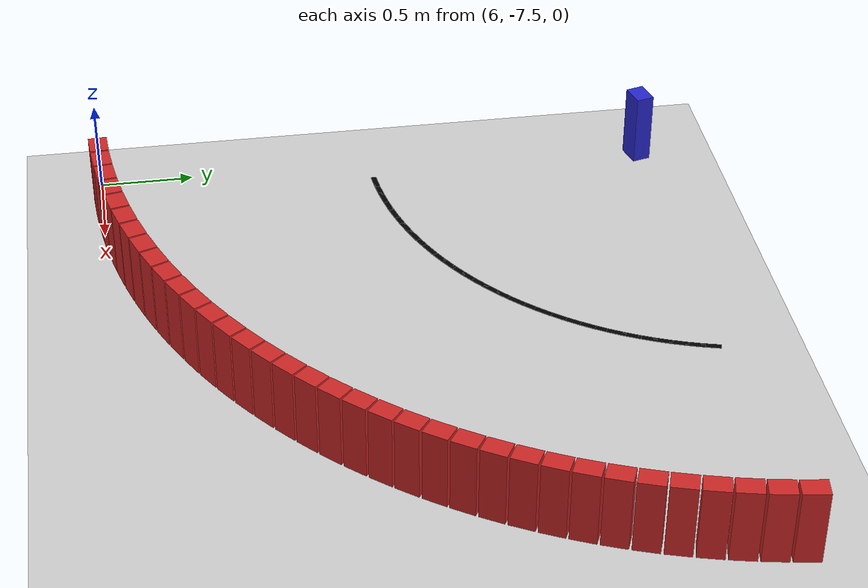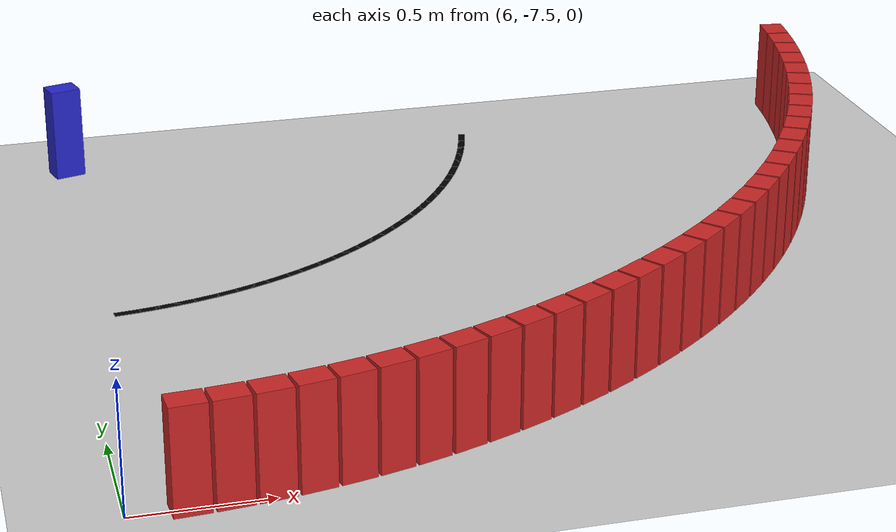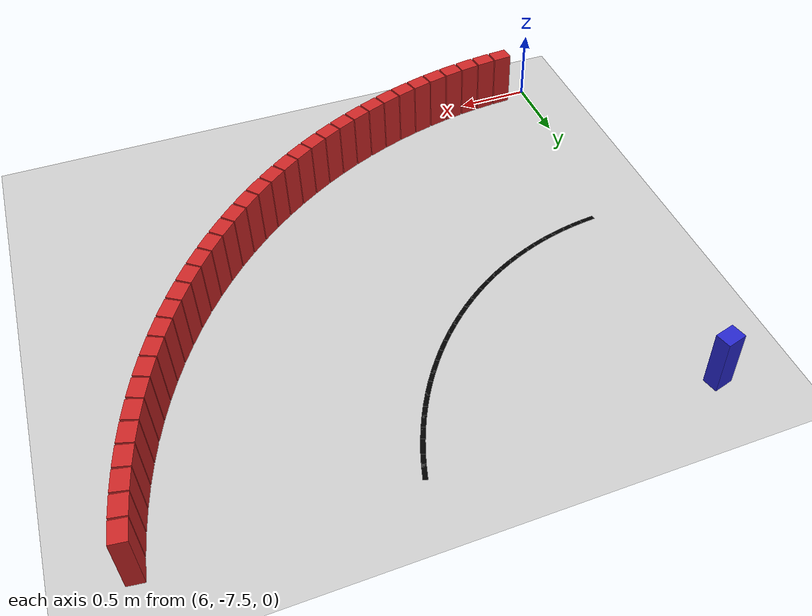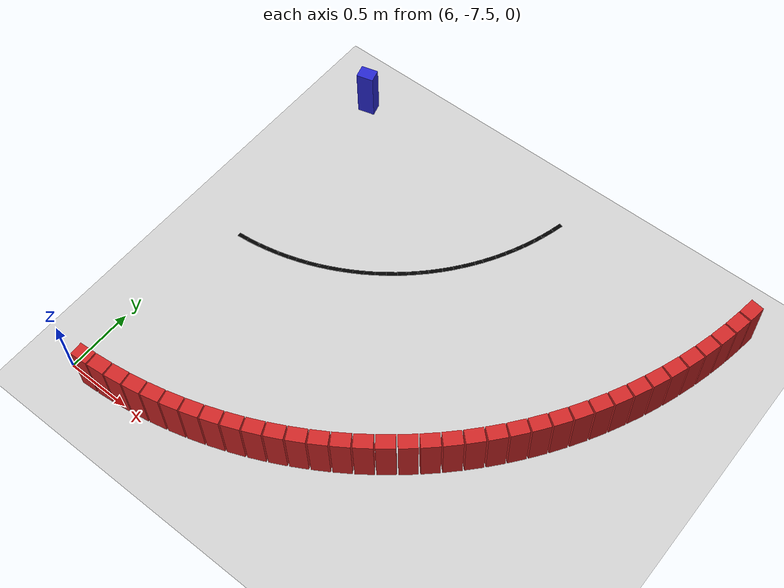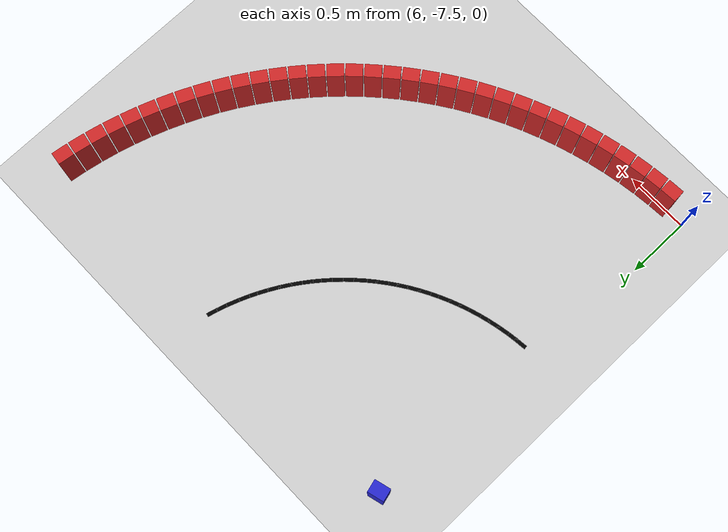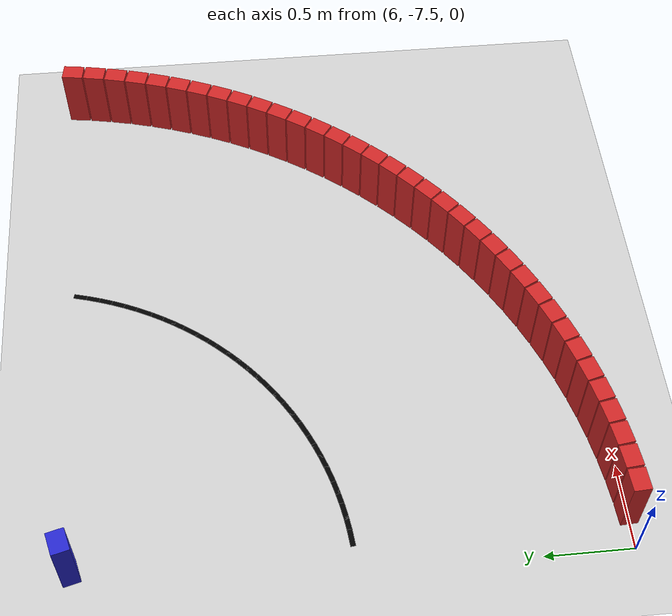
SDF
<sdf version="1.6">
 <world name="new_race_track">
  <include><uri>model://ground_plane</uri></include>
  <include><uri>model://sun</uri></include>
  <model name="race_track">
   <static>true</static>
   <link name="wall_link_206">
    <collision name="c"><geometry><box><size>0.1305 0.1 0.4</size></box></geometry></collision>
    <visual name="v">
     <geometry><box><size>0.1305 0.1 0.4</size></box></geometry>
     <material><ambient>0.15 0.15 0.8 1</ambient><diffuse>0.15 0.15 0.8 1</diffuse></material>
    </visual>
    <pose>6.1293 -4.4826 0.200 0 0 0.2618</pose>
   </link>
   <link name="wall_link_613">
    <collision name="c"><geometry><box><size>0.1305 0.1 0.4</size></box></geometry></collision>
    <visual name="v">
     <geometry><box><size>0.1305 0.1 0.4</size></box></geometry>
     <material><ambient>0.8 0.15 0.15 1</ambient><diffuse>0.8 0.15 0.15 1</diffuse></material>
    </visual>
    <pose>6.2113 -7.4932 0.200 0 0 0.0604</pose>
   </link>
   <link name="wall_link_614">
    <collision name="c"><geometry><box><size>0.1305 0.1 0.4</size></box></geometry></collision>
    <visual name="v">
     <geometry><box><size>0.1305 0.1 0.4</size></box></geometry>
     <material><ambient>0.8 0.15 0.15 1</ambient><diffuse>0.8 0.15 0.15 1</diffuse></material>
    </visual>
    <pose>6.3518 -7.4819 0.200 0 0 0.1007</pose>
   </link>
   <link name="wall_link_615">
    <collision name="c"><geometry><box><size>0.1305 0.1 0.4</size></box></geometry></collision>
    <visual name="v">
     <geometry><box><size>0.1305 0.1 0.4</size></box></geometry>
     <material><ambient>0.8 0.15 0.15 1</ambient><diffuse>0.8 0.15 0.15 1</diffuse></material>
    </visual>
    <pose>6.4917 -7.4649 0.200 0 0 0.1410</pose>
   </link>
   <link name="wall_link_616">
    <collision name="c"><geometry><box><size>0.1305 0.1 0.4</size></box></geometry></collision>
    <visual name="v">
     <geometry><box><size>0.1305 0.1 0.4</size></box></geometry>
     <material><ambient>0.8 0.15 0.15 1</ambient><diffuse>0.8 0.15 0.15 1</diffuse></material>
    </visual>
    <pose>6.6308 -7.4423 0.200 0 0 0.1812</pose>
   </link>
   <link name="wall_link_617">
    <collision name="c"><geometry><box><size>0.1305 0.1 0.4</size></box></geometry></collision>
    <visual name="v">
     <geometry><box><size>0.1305 0.1 0.4</size></box></geometry>
     <material><ambient>0.8 0.15 0.15 1</ambient><diffuse>0.8 0.15 0.15 1</diffuse></material>
    </visual>
    <pose>6.7689 -7.4141 0.200 0 0 0.2215</pose>
   </link>
   <link name="wall_link_618">
    <collision name="c"><geometry><box><size>0.1305 0.1 0.4</size></box></geometry></collision>
    <visual name="v">
     <geometry><box><size>0.1305 0.1 0.4</size></box></geometry>
     <material><ambient>0.8 0.15 0.15 1</ambient><diffuse>0.8 0.15 0.15 1</diffuse></material>
    </visual>
    <pose>6.9058 -7.3803 0.200 0 0 0.2618</pose>
   </link>
   <link name="wall_link_619">
    <collision name="c"><geometry><box><size>0.1305 0.1 0.4</size></box></geometry></collision>
    <visual name="v">
     <geometry><box><size>0.1305 0.1 0.4</size></box></geometry>
     <material><ambient>0.8 0.15 0.15 1</ambient><diffuse>0.8 0.15 0.15 1</diffuse></material>
    </visual>
    <pose>7.0411 -7.3411 0.200 0 0 0.3021</pose>
   </link>
   <link name="wall_link_620">
    <collision name="c"><geometry><box><size>0.1305 0.1 0.4</size></box></geometry></collision>
    <visual name="v">
     <geometry><box><size>0.1305 0.1 0.4</size></box></geometry>
     <material><ambient>0.8 0.15 0.15 1</ambient><diffuse>0.8 0.15 0.15 1</diffuse></material>
    </visual>
    <pose>7.1748 -7.2965 0.200 0 0 0.3424</pose>
   </link>
   <link name="wall_link_621">
    <collision name="c"><geometry><box><size>0.1305 0.1 0.4</size></box></geometry></collision>
    <visual name="v">
     <geometry><box><size>0.1305 0.1 0.4</size></box></geometry>
     <material><ambient>0.8 0.15 0.15 1</ambient><diffuse>0.8 0.15 0.15 1</diffuse></material>
    </visual>
    <pose>7.3066 -7.2465 0.200 0 0 0.3826</pose>
   </link>
   <link name="wall_link_622">
    <collision name="c"><geometry><box><size>0.1305 0.1 0.4</size></box></geometry></collision>
    <visual name="v">
     <geometry><box><size>0.1305 0.1 0.4</size></box></geometry>
     <material><ambient>0.8 0.15 0.15 1</ambient><diffuse>0.8 0.15 0.15 1</diffuse></material>
    </visual>
    <pose>7.4363 -7.1913 0.200 0 0 0.4229</pose>
   </link>
   <link name="wall_link_623">
    <collision name="c"><geometry><box><size>0.1305 0.1 0.4</size></box></geometry></collision>
    <visual name="v">
     <geometry><box><size>0.1305 0.1 0.4</size></box></geometry>
     <material><ambient>0.8 0.15 0.15 1</ambient><diffuse>0.8 0.15 0.15 1</diffuse></material>
    </visual>
    <pose>7.5636 -7.1309 0.200 0 0 0.4632</pose>
   </link>
   <link name="wall_link_624">
    <collision name="c"><geometry><box><size>0.1305 0.1 0.4</size></box></geometry></collision>
    <visual name="v">
     <geometry><box><size>0.1305 0.1 0.4</size></box></geometry>
     <material><ambient>0.8 0.15 0.15 1</ambient><diffuse>0.8 0.15 0.15 1</diffuse></material>
    </visual>
    <pose>7.6884 -7.0654 0.200 0 0 0.5035</pose>
   </link>
   <link name="wall_link_625">
    <collision name="c"><geometry><box><size>0.1305 0.1 0.4</size></box></geometry></collision>
    <visual name="v">
     <geometry><box><size>0.1305 0.1 0.4</size></box></geometry>
     <material><ambient>0.8 0.15 0.15 1</ambient><diffuse>0.8 0.15 0.15 1</diffuse></material>
    </visual>
    <pose>7.8105 -6.9949 0.200 0 0 0.5437</pose>
   </link>
   <link name="wall_link_626">
    <collision name="c"><geometry><box><size>0.1305 0.1 0.4</size></box></geometry></collision>
    <visual name="v">
     <geometry><box><size>0.1305 0.1 0.4</size></box></geometry>
     <material><ambient>0.8 0.15 0.15 1</ambient><diffuse>0.8 0.15 0.15 1</diffuse></material>
    </visual>
    <pose>7.9296 -6.9196 0.200 0 0 0.5840</pose>
   </link>
   <link name="wall_link_627">
    <collision name="c"><geometry><box><size>0.1305 0.1 0.4</size></box></geometry></collision>
    <visual name="v">
     <geometry><box><size>0.1305 0.1 0.4</size></box></geometry>
     <material><ambient>0.8 0.15 0.15 1</ambient><diffuse>0.8 0.15 0.15 1</diffuse></material>
    </visual>
    <pose>8.0456 -6.8395 0.200 0 0 0.6243</pose>
   </link>
   <link name="wall_link_628">
    <collision name="c"><geometry><box><size>0.1305 0.1 0.4</size></box></geometry></collision>
    <visual name="v">
     <geometry><box><size>0.1305 0.1 0.4</size></box></geometry>
     <material><ambient>0.8 0.15 0.15 1</ambient><diffuse>0.8 0.15 0.15 1</diffuse></material>
    </visual>
    <pose>8.1583 -6.7548 0.200 0 0 0.6646</pose>
   </link>
   <link name="wall_link_629">
    <collision name="c"><geometry><box><size>0.1305 0.1 0.4</size></box></geometry></collision>
    <visual name="v">
     <geometry><box><size>0.1305 0.1 0.4</size></box></geometry>
     <material><ambient>0.8 0.15 0.15 1</ambient><diffuse>0.8 0.15 0.15 1</diffuse></material>
    </visual>
    <pose>8.2674 -6.6657 0.200 0 0 0.7048</pose>
   </link>
   <link name="wall_link_630">
    <collision name="c"><geometry><box><size>0.1305 0.1 0.4</size></box></geometry></collision>
    <visual name="v">
     <geometry><box><size>0.1305 0.1 0.4</size></box></geometry>
     <material><ambient>0.8 0.15 0.15 1</ambient><diffuse>0.8 0.15 0.15 1</diffuse></material>
    </visual>
    <pose>8.3729 -6.5722 0.200 0 0 0.7451</pose>
   </link>
   <link name="wall_link_631">
    <collision name="c"><geometry><box><size>0.1305 0.1 0.4</size></box></geometry></collision>
    <visual name="v">
     <geometry><box><size>0.1305 0.1 0.4</size></box></geometry>
     <material><ambient>0.8 0.15 0.15 1</ambient><diffuse>0.8 0.15 0.15 1</diffuse></material>
    </visual>
    <pose>8.4746 -6.4746 0.200 0 0 0.7854</pose>
   </link>
   <link name="wall_link_632">
    <collision name="c"><geometry><box><size>0.1305 0.1 0.4</size></box></geometry></collision>
    <visual name="v">
     <geometry><box><size>0.1305 0.1 0.4</size></box></geometry>
     <material><ambient>0.8 0.15 0.15 1</ambient><diffuse>0.8 0.15 0.15 1</diffuse></material>
    </visual>
    <pose>8.5722 -6.3729 0.200 0 0 0.8257</pose>
   </link>
   <link name="wall_link_633">
    <collision name="c"><geometry><box><size>0.1305 0.1 0.4</size></box></geometry></collision>
    <visual name="v">
     <geometry><box><size>0.1305 0.1 0.4</size></box></geometry>
     <material><ambient>0.8 0.15 0.15 1</ambient><diffuse>0.8 0.15 0.15 1</diffuse></material>
    </visual>
    <pose>8.6657 -6.2674 0.200 0 0 0.8660</pose>
   </link>
   <link name="wall_link_634">
    <collision name="c"><geometry><box><size>0.1305 0.1 0.4</size></box></geometry></collision>
    <visual name="v">
     <geometry><box><size>0.1305 0.1 0.4</size></box></geometry>
     <material><ambient>0.8 0.15 0.15 1</ambient><diffuse>0.8 0.15 0.15 1</diffuse></material>
    </visual>
    <pose>8.7548 -6.1583 0.200 0 0 0.9062</pose>
   </link>
   <link name="wall_link_635">
    <collision name="c"><geometry><box><size>0.1305 0.1 0.4</size></box></geometry></collision>
    <visual name="v">
     <geometry><box><size>0.1305 0.1 0.4</size></box></geometry>
     <material><ambient>0.8 0.15 0.15 1</ambient><diffuse>0.8 0.15 0.15 1</diffuse></material>
    </visual>
    <pose>8.8395 -6.0456 0.200 0 0 0.9465</pose>
   </link>
   <link name="wall_link_636">
    <collision name="c"><geometry><box><size>0.1305 0.1 0.4</size></box></geometry></collision>
    <visual name="v">
     <geometry><box><size>0.1305 0.1 0.4</size></box></geometry>
     <material><ambient>0.8 0.15 0.15 1</ambient><diffuse>0.8 0.15 0.15 1</diffuse></material>
    </visual>
    <pose>8.9196 -5.9296 0.200 0 0 0.9868</pose>
   </link>
   <link name="wall_link_637">
    <collision name="c"><geometry><box><size>0.1305 0.1 0.4</size></box></geometry></collision>
    <visual name="v">
     <geometry><box><size>0.1305 0.1 0.4</size></box></geometry>
     <material><ambient>0.8 0.15 0.15 1</ambient><diffuse>0.8 0.15 0.15 1</diffuse></material>
    </visual>
    <pose>8.9949 -5.8105 0.200 0 0 1.0271</pose>
   </link>
   <link name="wall_link_638">
    <collision name="c"><geometry><box><size>0.1305 0.1 0.4</size></box></geometry></collision>
    <visual name="v">
     <geometry><box><size>0.1305 0.1 0.4</size></box></geometry>
     <material><ambient>0.8 0.15 0.15 1</ambient><diffuse>0.8 0.15 0.15 1</diffuse></material>
    </visual>
    <pose>9.0654 -5.6884 0.200 0 0 1.0673</pose>
   </link>
   <link name="wall_link_639">
    <collision name="c"><geometry><box><size>0.1305 0.1 0.4</size></box></geometry></collision>
    <visual name="v">
     <geometry><box><size>0.1305 0.1 0.4</size></box></geometry>
     <material><ambient>0.8 0.15 0.15 1</ambient><diffuse>0.8 0.15 0.15 1</diffuse></material>
    </visual>
    <pose>9.1309 -5.5636 0.200 0 0 1.1076</pose>
   </link>
   <link name="wall_link_640">
    <collision name="c"><geometry><box><size>0.1305 0.1 0.4</size></box></geometry></collision>
    <visual name="v">
     <geometry><box><size>0.1305 0.1 0.4</size></box></geometry>
     <material><ambient>0.8 0.15 0.15 1</ambient><diffuse>0.8 0.15 0.15 1</diffuse></material>
    </visual>
    <pose>9.1913 -5.4363 0.200 0 0 1.1479</pose>
   </link>
   <link name="wall_link_641">
    <collision name="c"><geometry><box><size>0.1305 0.1 0.4</size></box></geometry></collision>
    <visual name="v">
     <geometry><box><size>0.1305 0.1 0.4</size></box></geometry>
     <material><ambient>0.8 0.15 0.15 1</ambient><diffuse>0.8 0.15 0.15 1</diffuse></material>
    </visual>
    <pose>9.2465 -5.3066 0.200 0 0 1.1882</pose>
   </link>
   <link name="wall_link_642">
    <collision name="c"><geometry><box><size>0.1305 0.1 0.4</size></box></geometry></collision>
    <visual name="v">
     <geometry><box><size>0.1305 0.1 0.4</size></box></geometry>
     <material><ambient>0.8 0.15 0.15 1</ambient><diffuse>0.8 0.15 0.15 1</diffuse></material>
    </visual>
    <pose>9.2965 -5.1748 0.200 0 0 1.2284</pose>
   </link>
   <link name="wall_link_643">
    <collision name="c"><geometry><box><size>0.1305 0.1 0.4</size></box></geometry></collision>
    <visual name="v">
     <geometry><box><size>0.1305 0.1 0.4</size></box></geometry>
     <material><ambient>0.8 0.15 0.15 1</ambient><diffuse>0.8 0.15 0.15 1</diffuse></material>
    </visual>
    <pose>9.3411 -5.0411 0.200 0 0 1.2687</pose>
   </link>
   <link name="wall_link_644">
    <collision name="c"><geometry><box><size>0.1305 0.1 0.4</size></box></geometry></collision>
    <visual name="v">
     <geometry><box><size>0.1305 0.1 0.4</size></box></geometry>
     <material><ambient>0.8 0.15 0.15 1</ambient><diffuse>0.8 0.15 0.15 1</diffuse></material>
    </visual>
    <pose>9.3803 -4.9058 0.200 0 0 1.3090</pose>
   </link>
   <link name="wall_link_645">
    <collision name="c"><geometry><box><size>0.1305 0.1 0.4</size></box></geometry></collision>
    <visual name="v">
     <geometry><box><size>0.1305 0.1 0.4</size></box></geometry>
     <material><ambient>0.8 0.15 0.15 1</ambient><diffuse>0.8 0.15 0.15 1</diffuse></material>
    </visual>
    <pose>9.4141 -4.7689 0.200 0 0 1.3493</pose>
   </link>
   <link name="wall_link_646">
    <collision name="c"><geometry><box><size>0.1305 0.1 0.4</size></box></geometry></collision>
    <visual name="v">
     <geometry><box><size>0.1305 0.1 0.4</size></box></geometry>
     <material><ambient>0.8 0.15 0.15 1</ambient><diffuse>0.8 0.15 0.15 1</diffuse></material>
    </visual>
    <pose>9.4423 -4.6308 0.200 0 0 1.3896</pose>
   </link>
   <link name="wall_link_647">
    <collision name="c"><geometry><box><size>0.1305 0.1 0.4</size></box></geometry></collision>
    <visual name="v">
     <geometry><box><size>0.1305 0.1 0.4</size></box></geometry>
     <material><ambient>0.8 0.15 0.15 1</ambient><diffuse>0.8 0.15 0.15 1</diffuse></material>
    </visual>
    <pose>9.4649 -4.4917 0.200 0 0 1.4298</pose>
   </link>
   <link name="line_link_1183">
    <visual name="v">
     <geometry><box><size>0.1005 0.03 0.002</size></box></geometry>
     <material><ambient>0 0 0 1</ambient><diffuse>0 0 0 1</diffuse></material>
    </visual>
    <pose>6.2010 -5.9895 0.002 0 0 0.1007</pose>
   </link>
   <link name="line_link_1184">
    <visual name="v">
     <geometry><box><size>0.1005 0.03 0.002</size></box></geometry>
     <material><ambient>0 0 0 1</ambient><diffuse>0 0 0 1</diffuse></material>
    </visual>
    <pose>6.2809 -5.9798 0.002 0 0 0.1410</pose>
   </link>
   <link name="line_link_1185">
    <visual name="v">
     <geometry><box><size>0.1005 0.03 0.002</size></box></geometry>
     <material><ambient>0 0 0 1</ambient><diffuse>0 0 0 1</diffuse></material>
    </visual>
    <pose>6.3604 -5.9668 0.002 0 0 0.1812</pose>
   </link>
   <link name="line_link_1186">
    <visual name="v">
     <geometry><box><size>0.1005 0.03 0.002</size></box></geometry>
     <material><ambient>0 0 0 1</ambient><diffuse>0 0 0 1</diffuse></material>
    </visual>
    <pose>6.4393 -5.9507 0.002 0 0 0.2215</pose>
   </link>
   <link name="line_link_1187">
    <visual name="v">
     <geometry><box><size>0.1005 0.03 0.002</size></box></geometry>
     <material><ambient>0 0 0 1</ambient><diffuse>0 0 0 1</diffuse></material>
    </visual>
    <pose>6.5175 -5.9315 0.002 0 0 0.2618</pose>
   </link>
   <link name="line_link_1188">
    <visual name="v">
     <geometry><box><size>0.1005 0.03 0.002</size></box></geometry>
     <material><ambient>0 0 0 1</ambient><diffuse>0 0 0 1</diffuse></material>
    </visual>
    <pose>6.5949 -5.9091 0.002 0 0 0.3021</pose>
   </link>
   <link name="line_link_1189">
    <visual name="v">
     <geometry><box><size>0.1005 0.03 0.002</size></box></geometry>
     <material><ambient>0 0 0 1</ambient><diffuse>0 0 0 1</diffuse></material>
    </visual>
    <pose>6.6713 -5.8836 0.002 0 0 0.3424</pose>
   </link>
   <link name="line_link_1190">
    <visual name="v">
     <geometry><box><size>0.1005 0.03 0.002</size></box></geometry>
     <material><ambient>0 0 0 1</ambient><diffuse>0 0 0 1</diffuse></material>
    </visual>
    <pose>6.7466 -5.8550 0.002 0 0 0.3826</pose>
   </link>
   <link name="line_link_1191">
    <visual name="v">
     <geometry><box><size>0.1005 0.03 0.002</size></box></geometry>
     <material><ambient>0 0 0 1</ambient><diffuse>0 0 0 1</diffuse></material>
    </visual>
    <pose>6.8207 -5.8234 0.002 0 0 0.4229</pose>
   </link>
   <link name="line_link_1192">
    <visual name="v">
     <geometry><box><size>0.1005 0.03 0.002</size></box></geometry>
     <material><ambient>0 0 0 1</ambient><diffuse>0 0 0 1</diffuse></material>
    </visual>
    <pose>6.8934 -5.7889 0.002 0 0 0.4632</pose>
   </link>
   <link name="line_link_1193">
    <visual name="v">
     <geometry><box><size>0.1005 0.03 0.002</size></box></geometry>
     <material><ambient>0 0 0 1</ambient><diffuse>0 0 0 1</diffuse></material>
    </visual>
    <pose>6.9647 -5.7515 0.002 0 0 0.5035</pose>
   </link>
   <link name="line_link_1194">
    <visual name="v">
     <geometry><box><size>0.1005 0.03 0.002</size></box></geometry>
     <material><ambient>0 0 0 1</ambient><diffuse>0 0 0 1</diffuse></material>
    </visual>
    <pose>7.0345 -5.7112 0.002 0 0 0.5437</pose>
   </link>
   <link name="line_link_1195">
    <visual name="v">
     <geometry><box><size>0.1005 0.03 0.002</size></box></geometry>
     <material><ambient>0 0 0 1</ambient><diffuse>0 0 0 1</diffuse></material>
    </visual>
    <pose>7.1025 -5.6682 0.002 0 0 0.5840</pose>
   </link>
   <link name="line_link_1196">
    <visual name="v">
     <geometry><box><size>0.1005 0.03 0.002</size></box></geometry>
     <material><ambient>0 0 0 1</ambient><diffuse>0 0 0 1</diffuse></material>
    </visual>
    <pose>7.1688 -5.6224 0.002 0 0 0.6243</pose>
   </link>
   <link name="line_link_1197">
    <visual name="v">
     <geometry><box><size>0.1005 0.03 0.002</size></box></geometry>
     <material><ambient>0 0 0 1</ambient><diffuse>0 0 0 1</diffuse></material>
    </visual>
    <pose>7.2332 -5.5740 0.002 0 0 0.6646</pose>
   </link>
   <link name="line_link_1198">
    <visual name="v">
     <geometry><box><size>0.1005 0.03 0.002</size></box></geometry>
     <material><ambient>0 0 0 1</ambient><diffuse>0 0 0 1</diffuse></material>
    </visual>
    <pose>7.2956 -5.5231 0.002 0 0 0.7048</pose>
   </link>
   <link name="line_link_1199">
    <visual name="v">
     <geometry><box><size>0.1005 0.03 0.002</size></box></geometry>
     <material><ambient>0 0 0 1</ambient><diffuse>0 0 0 1</diffuse></material>
    </visual>
    <pose>7.3558 -5.4697 0.002 0 0 0.7451</pose>
   </link>
   <link name="line_link_1200">
    <visual name="v">
     <geometry><box><size>0.1005 0.03 0.002</size></box></geometry>
     <material><ambient>0 0 0 1</ambient><diffuse>0 0 0 1</diffuse></material>
    </visual>
    <pose>7.4139 -5.4139 0.002 0 0 0.7854</pose>
   </link>
   <link name="line_link_1201">
    <visual name="v">
     <geometry><box><size>0.1005 0.03 0.002</size></box></geometry>
     <material><ambient>0 0 0 1</ambient><diffuse>0 0 0 1</diffuse></material>
    </visual>
    <pose>7.4697 -5.3558 0.002 0 0 0.8257</pose>
   </link>
   <link name="line_link_1202">
    <visual name="v">
     <geometry><box><size>0.1005 0.03 0.002</size></box></geometry>
     <material><ambient>0 0 0 1</ambient><diffuse>0 0 0 1</diffuse></material>
    </visual>
    <pose>7.5231 -5.2956 0.002 0 0 0.8660</pose>
   </link>
   <link name="line_link_1203">
    <visual name="v">
     <geometry><box><size>0.1005 0.03 0.002</size></box></geometry>
     <material><ambient>0 0 0 1</ambient><diffuse>0 0 0 1</diffuse></material>
    </visual>
    <pose>7.5740 -5.2332 0.002 0 0 0.9062</pose>
   </link>
   <link name="line_link_1204">
    <visual name="v">
     <geometry><box><size>0.1005 0.03 0.002</size></box></geometry>
     <material><ambient>0 0 0 1</ambient><diffuse>0 0 0 1</diffuse></material>
    </visual>
    <pose>7.6224 -5.1688 0.002 0 0 0.9465</pose>
   </link>
   <link name="line_link_1205">
    <visual name="v">
     <geometry><box><size>0.1005 0.03 0.002</size></box></geometry>
     <material><ambient>0 0 0 1</ambient><diffuse>0 0 0 1</diffuse></material>
    </visual>
    <pose>7.6682 -5.1025 0.002 0 0 0.9868</pose>
   </link>
   <link name="line_link_1206">
    <visual name="v">
     <geometry><box><size>0.1005 0.03 0.002</size></box></geometry>
     <material><ambient>0 0 0 1</ambient><diffuse>0 0 0 1</diffuse></material>
    </visual>
    <pose>7.7112 -5.0345 0.002 0 0 1.0271</pose>
   </link>
   <link name="line_link_1207">
    <visual name="v">
     <geometry><box><size>0.1005 0.03 0.002</size></box></geometry>
     <material><ambient>0 0 0 1</ambient><diffuse>0 0 0 1</diffuse></material>
    </visual>
    <pose>7.7515 -4.9647 0.002 0 0 1.0673</pose>
   </link>
   <link name="line_link_1208">
    <visual name="v">
     <geometry><box><size>0.1005 0.03 0.002</size></box></geometry>
     <material><ambient>0 0 0 1</ambient><diffuse>0 0 0 1</diffuse></material>
    </visual>
    <pose>7.7889 -4.8934 0.002 0 0 1.1076</pose>
   </link>
   <link name="line_link_1209">
    <visual name="v">
     <geometry><box><size>0.1005 0.03 0.002</size></box></geometry>
     <material><ambient>0 0 0 1</ambient><diffuse>0 0 0 1</diffuse></material>
    </visual>
    <pose>7.8234 -4.8207 0.002 0 0 1.1479</pose>
   </link>
   <link name="line_link_1210">
    <visual name="v">
     <geometry><box><size>0.1005 0.03 0.002</size></box></geometry>
     <material><ambient>0 0 0 1</ambient><diffuse>0 0 0 1</diffuse></material>
    </visual>
    <pose>7.8550 -4.7466 0.002 0 0 1.1882</pose>
   </link>
   <link name="line_link_1211">
    <visual name="v">
     <geometry><box><size>0.1005 0.03 0.002</size></box></geometry>
     <material><ambient>0 0 0 1</ambient><diffuse>0 0 0 1</diffuse></material>
    </visual>
    <pose>7.8836 -4.6713 0.002 0 0 1.2284</pose>
   </link>
   <link name="line_link_1212">
    <visual name="v">
     <geometry><box><size>0.1005 0.03 0.002</size></box></geometry>
     <material><ambient>0 0 0 1</ambient><diffuse>0 0 0 1</diffuse></material>
    </visual>
    <pose>7.9091 -4.5949 0.002 0 0 1.2687</pose>
   </link>
   <link name="line_link_1213">
    <visual name="v">
     <geometry><box><size>0.1005 0.03 0.002</size></box></geometry>
     <material><ambient>0 0 0 1</ambient><diffuse>0 0 0 1</diffuse></material>
    </visual>
    <pose>7.9315 -4.5175 0.002 0 0 1.3090</pose>
   </link>
  </model>
 </world>
</sdf>
